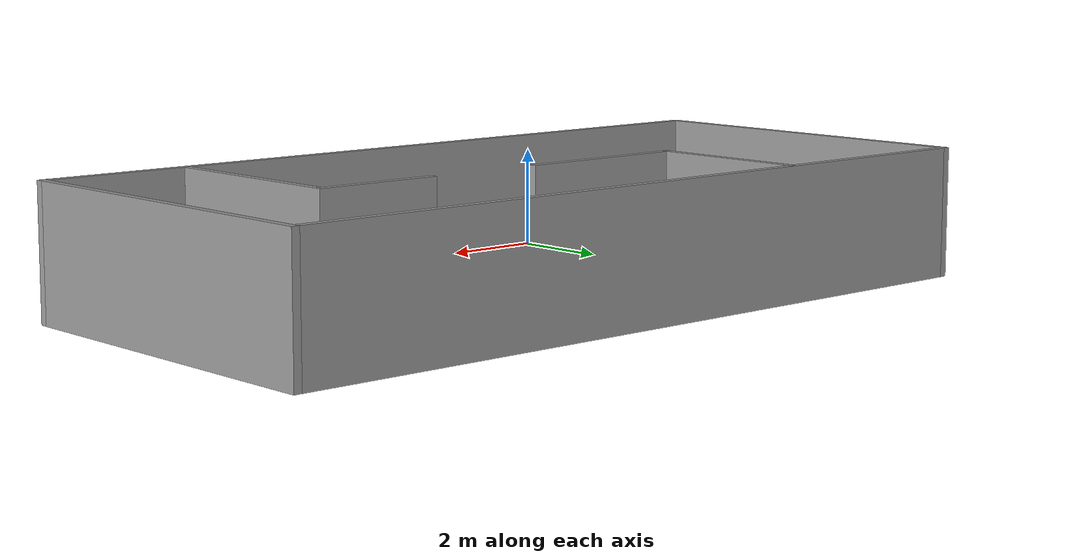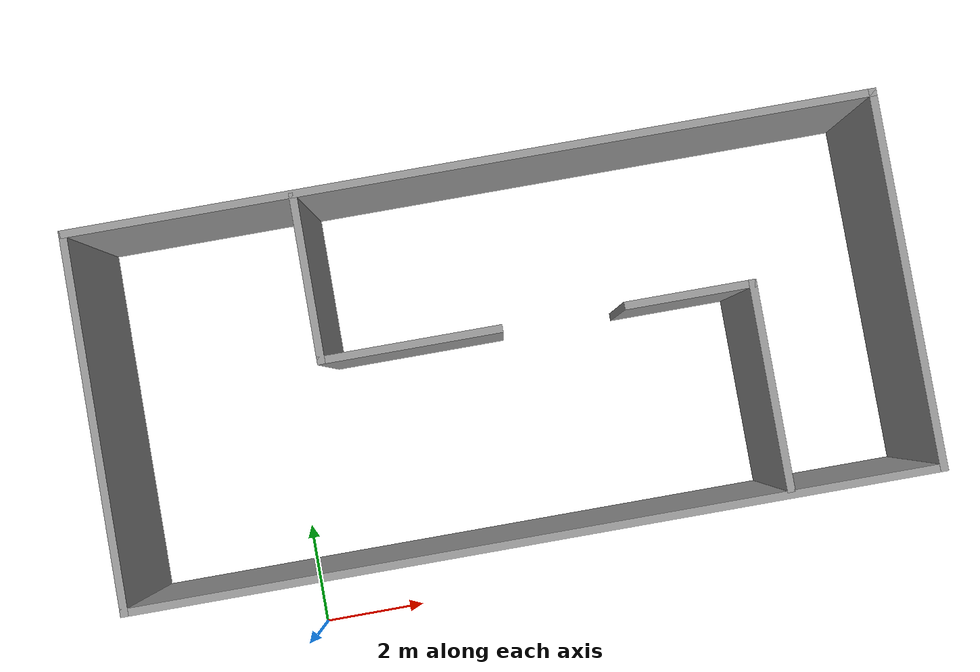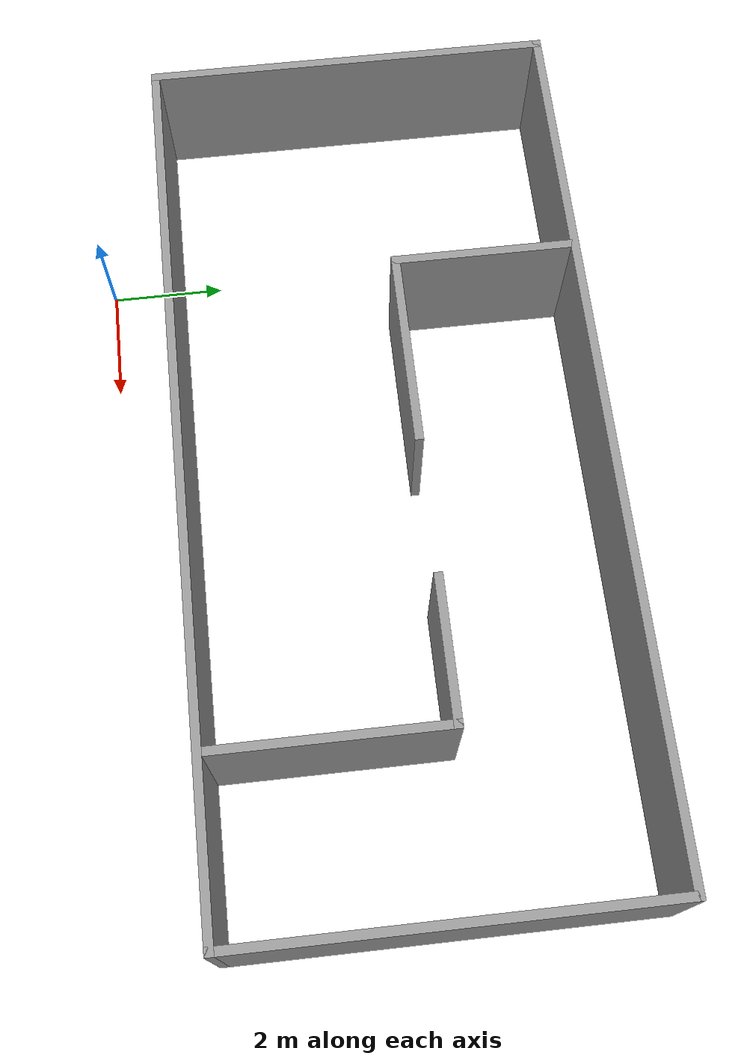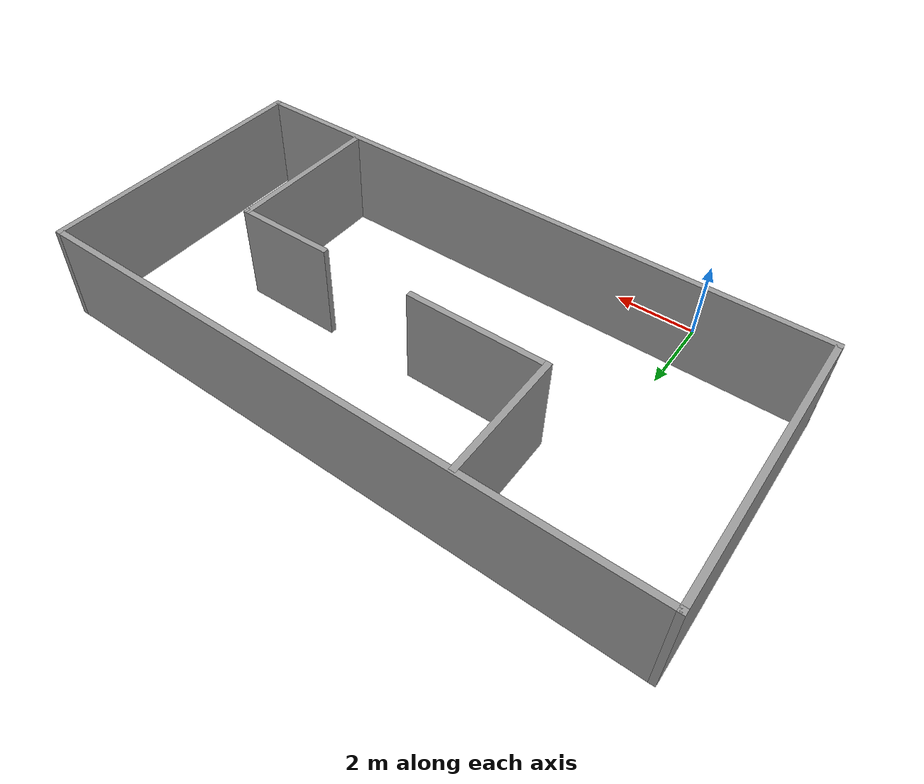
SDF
<?xml version='1.0'?>
<sdf version='1.7'>
  <model name='home'>
    <pose>4.51367 4.21131 0 0 -0 0</pose>
    <link name='Wall_10'>
      <collision name='Wall_10_Collision'>
        <geometry>
          <box>
            <size>7.25 0.15 2.5</size>
          </box>
        </geometry>
        <pose>0 0 1.25 0 -0 0</pose>
      </collision>
      <visual name='Wall_10_Visual'>
        <pose>0 0 1.25 0 -0 0</pose>
        <geometry>
          <box>
            <size>7.25 0.15 2.5</size>
          </box>
        </geometry>
        <material>
          <script>
            <uri>file://media/materials/scripts/gazebo.material</uri>
            <name>Gazebo/Grey</name>
          </script>
          <ambient>1 1 1 1</ambient>
        </material>
        <meta>
          <layer>0</layer>
        </meta>
      </visual>
      <pose>7.675 0.586315 0 0 -0 -1.5708</pose>
    </link>
    <link name='Wall_11'>
      <collision name='Wall_11_Collision'>
        <geometry>
          <box>
            <size>15.5 0.15 2.5</size>
          </box>
        </geometry>
        <pose>0 0 1.25 0 -0 0</pose>
      </collision>
      <visual name='Wall_11_Visual'>
        <pose>0 0 1.25 0 -0 0</pose>
        <geometry>
          <box>
            <size>15.5 0.15 2.5</size>
          </box>
        </geometry>
        <material>
          <script>
            <uri>file://media/materials/scripts/gazebo.material</uri>
            <name>Gazebo/Grey</name>
          </script>
          <ambient>1 1 1 1</ambient>
        </material>
        <meta>
          <layer>0</layer>
        </meta>
      </visual>
      <pose>-0 -2.96368 0 0 -0 3.14159</pose>
    </link>
    <link name='Wall_13'>
      <collision name='Wall_13_Collision'>
        <geometry>
          <box>
            <size>3.25 0.15 2.5</size>
          </box>
        </geometry>
        <pose>0 0 1.25 0 -0 0</pose>
      </collision>
      <visual name='Wall_13_Visual'>
        <pose>0 0 1.25 0 -0 0</pose>
        <geometry>
          <box>
            <size>3.25 0.15 2.5</size>
          </box>
        </geometry>
        <material>
          <script>
            <uri>file://media/materials/scripts/gazebo.material</uri>
            <name>Gazebo/Grey</name>
          </script>
          <ambient>1 1 1 1</ambient>
        </material>
        <meta>
          <layer>0</layer>
        </meta>
      </visual>
      <pose>-3.33171 2.5371 0 0 -0 -1.5708</pose>
    </link>
    <link name='Wall_14'>
      <collision name='Wall_14_Collision'>
        <geometry>
          <box>
            <size>3.5 0.15 2.5</size>
          </box>
        </geometry>
        <pose>0 0 1.25 0 -0 0</pose>
      </collision>
      <visual name='Wall_14_Visual'>
        <pose>0 0 1.25 0 -0 0</pose>
        <geometry>
          <box>
            <size>3.5 0.15 2.5</size>
          </box>
        </geometry>
        <material>
          <script>
            <uri>file://media/materials/scripts/gazebo.material</uri>
            <name>Gazebo/Grey</name>
          </script>
          <ambient>1 1 1 1</ambient>
        </material>
        <meta>
          <layer>0</layer>
        </meta>
      </visual>
      <pose>-1.65671 0.987099 0 0 -0 0</pose>
    </link>
    <link name='Wall_22'>
      <collision name='Wall_22_Collision'>
        <geometry>
          <box>
            <size>2.5 0.15 2.5</size>
          </box>
        </geometry>
        <pose>0 0 1.25 0 -0 0</pose>
      </collision>
      <visual name='Wall_22_Visual'>
        <pose>0 0 1.25 0 -0 0</pose>
        <geometry>
          <box>
            <size>2.5 0.15 2.5</size>
          </box>
        </geometry>
        <material>
          <script>
            <uri>file://media/materials/scripts/gazebo.material</uri>
            <name>Gazebo/Grey</name>
          </script>
          <ambient>1 1 1 1</ambient>
        </material>
        <meta>
          <layer>0</layer>
        </meta>
      </visual>
      <pose>3.64214 1.00148 0 0 -0 0</pose>
    </link>
    <link name='Wall_23'>
      <collision name='Wall_23_Collision'>
        <geometry>
          <box>
            <size>4 0.15 2.5</size>
          </box>
        </geometry>
        <pose>0 0 1.25 0 -0 0</pose>
      </collision>
      <visual name='Wall_23_Visual'>
        <pose>0 0 1.25 0 -0 0</pose>
        <geometry>
          <box>
            <size>4 0.15 2.5</size>
          </box>
        </geometry>
        <material>
          <script>
            <uri>file://media/materials/scripts/gazebo.material</uri>
            <name>Gazebo/Grey</name>
          </script>
          <ambient>1 1 1 1</ambient>
        </material>
        <meta>
          <layer>0</layer>
        </meta>
      </visual>
      <pose>4.81714 -0.923524 0 0 -0 -1.5708</pose>
    </link>
    <link name='Wall_8'>
      <collision name='Wall_8_Collision'>
        <geometry>
          <box>
            <size>7.25 0.15 2.5</size>
          </box>
        </geometry>
        <pose>0 0 1.25 0 -0 0</pose>
      </collision>
      <visual name='Wall_8_Visual'>
        <pose>0 0 1.25 0 -0 0</pose>
        <geometry>
          <box>
            <size>7.25 0.15 2.5</size>
          </box>
        </geometry>
        <material>
          <script>
            <uri>file://media/materials/scripts/gazebo.material</uri>
            <name>Gazebo/Grey</name>
          </script>
          <ambient>1 1 1 1</ambient>
        </material>
        <meta>
          <layer>0</layer>
        </meta>
      </visual>
      <pose>-7.675 0.586315 0 0 -0 1.5708</pose>
    </link>
    <link name='Wall_9'>
      <collision name='Wall_9_Collision'>
        <geometry>
          <box>
            <size>15.5 0.15 2.5</size>
          </box>
        </geometry>
        <pose>0 0 1.25 0 -0 0</pose>
      </collision>
      <visual name='Wall_9_Visual'>
        <pose>0 0 1.25 0 -0 0</pose>
        <geometry>
          <box>
            <size>15.5 0.15 2.5</size>
          </box>
        </geometry>
        <material>
          <script>
            <uri>file://media/materials/scripts/gazebo.material</uri>
            <name>Gazebo/Grey</name>
          </script>
          <ambient>1 1 1 1</ambient>
        </material>
        <meta>
          <layer>0</layer>
        </meta>
      </visual>
      <pose>-0 4.13631 0 0 -0 0</pose>
    </link>
    <static>1</static>
  </model>
</sdf>
